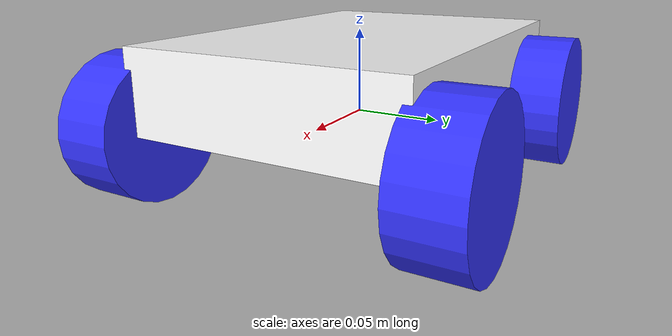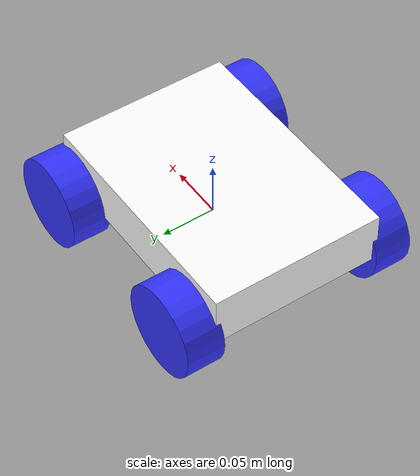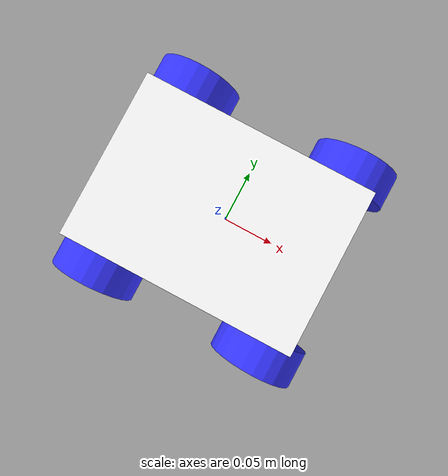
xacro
<?xml version="1.0"?>
<robot xmlns:xacro="http://www.ros.org/wiki/xacro">

    <xacro:include filename="inertial_macros.xacro"/>

    <material name="white">
        <color rgba="1 1 1 1"/>
    </material>

    <material name="orange">
        <color rgba="1 0.3 0.1 1"/>
    </material>

    <material name="blue">
        <color rgba="0.2 0.2 1 1"/>
    </material>

    <material name="black">
        <color rgba="0 0 0 1"/>
    </material>

    <material name="red">
        <color rgba="1 0 0 1"/>
    </material>

    <!-- BASE LINK -->
    <link name="base_link">
    </link>

    <!-- CHASSIS LINK -->
    <joint name="chassis_joint" type="fixed">
        <parent link="base_link"/>
        <child link="chassis"/>
        <origin xyz="-0.12 0 0"/>
    </joint>

    <link name="chassis">
        <visual>
            <origin xyz="0.11275 0 0.024"/>
            <geometry>
                <box size="0.2255 0.16 .048"/>
            </geometry>
            <material name="white"/>
        </visual>
        <collision>
            <origin xyz="0.11275 0 0.024"/>
            <geometry>
                <box size="0.2255 0.16 .048"/>
            </geometry>
        </collision>
        <xacro:inertial_box mass="0.58" x="0.2255" y="0.16" z="0.048">
            <origin xyz="0.11275 0 0.024" rpy="0 0 0"/>
        </xacro:inertial_box>
    </link>

    <!-- LEFT BACKWARD WHEEL LINK -->
    <joint name="left_backward_wheel_joint" type="continuous">
        <parent link="base_link"/>
        <child link="left_backward_wheel"/>
        <origin xyz="-0.08475 0.093 0" rpy="-${pi/2} 0 0"/>
        <axis xyz="0 0 1"/>
    </joint>

    <link name="left_backward_wheel">
        <visual>
            <geometry>
                <cylinder radius="0.0415" length="0.035"/>
            </geometry>
            <material name="blue"/>
        </visual>
        <collision>
            <geometry>
                <cylinder radius="0.0415" length="0.035"/>
            </geometry>
        </collision>
        <xacro:inertial_cylinder mass="0.057" length="0.035" radius="0.0415">
            <origin xyz="0 0 0" rpy="0 0 0"/>
        </xacro:inertial_cylinder>
    </link>

    <!-- RIGHT BACKWARD WHEEL LINK -->
    <joint name="right_backward_wheel_joint" type="continuous">
        <parent link="base_link"/>
        <child link="right_backward_wheel"/>
        <origin xyz="-0.08475 -0.093 0" rpy="${pi/2} 0 0"/>
        <axis xyz="0 0 -1"/>
    </joint>

    <link name="right_backward_wheel">
        <visual>
            <geometry>
                <cylinder radius="0.0415" length="0.035"/>
            </geometry>
            <material name="blue"/>
        </visual>
        <collision>
            <geometry>
                <cylinder radius="0.0415" length="0.035"/>
            </geometry>
        </collision>
        <xacro:inertial_cylinder mass="0.057" length="0.035" radius="0.0415">
            <origin xyz="0 0 0" rpy="0 0 0"/>
        </xacro:inertial_cylinder>
    </link>

    <!-- LEFT FORWARD WHEEL LINK -->
    <joint name="left_forward_wheel_joint" type="continuous">
        <parent link="base_link"/>
        <child link="left_forward_wheel"/>
        <origin xyz="0.08475 0.093 0" rpy="-${pi/2} 0 0"/>
        <axis xyz="0 0 1"/>
    </joint>

    <link name="left_forward_wheel">
        <visual>
            <geometry>
                <cylinder radius="0.0415" length="0.035"/>
            </geometry>
            <material name="blue"/>
        </visual>
        <collision>
            <geometry>
                <cylinder radius="0.0415" length="0.035"/>
            </geometry>
        </collision>
        <xacro:inertial_cylinder mass="0.057" length="0.035" radius="0.0415">
            <origin xyz="0 0 0" rpy="0 0 0"/>
        </xacro:inertial_cylinder>
    </link>

    <!-- RIGHT FORWARD WHEEL LINK -->
    <joint name="right_forward_wheel_joint" type="continuous">
        <parent link="base_link"/>
        <child link="right_forward_wheel"/>
        <origin xyz="0.08475 -0.093 0" rpy="${pi/2} 0 0"/>
        <axis xyz="0 0 -1"/>
    </joint>

    <link name="right_forward_wheel">
        <visual>
            <geometry>
                <cylinder radius="0.0415" length="0.035"/>
            </geometry>
            <material name="blue"/>
        </visual>
        <collision >
            <geometry>
                <cylinder radius="0.0415" length="0.035"/>
            </geometry>
        </collision>
        <xacro:inertial_cylinder mass="0.057" length="0.035" radius="0.0415">
            <origin xyz="0 0 0" rpy="0 0 0"/>
        </xacro:inertial_cylinder>
    </link>
</robot>
